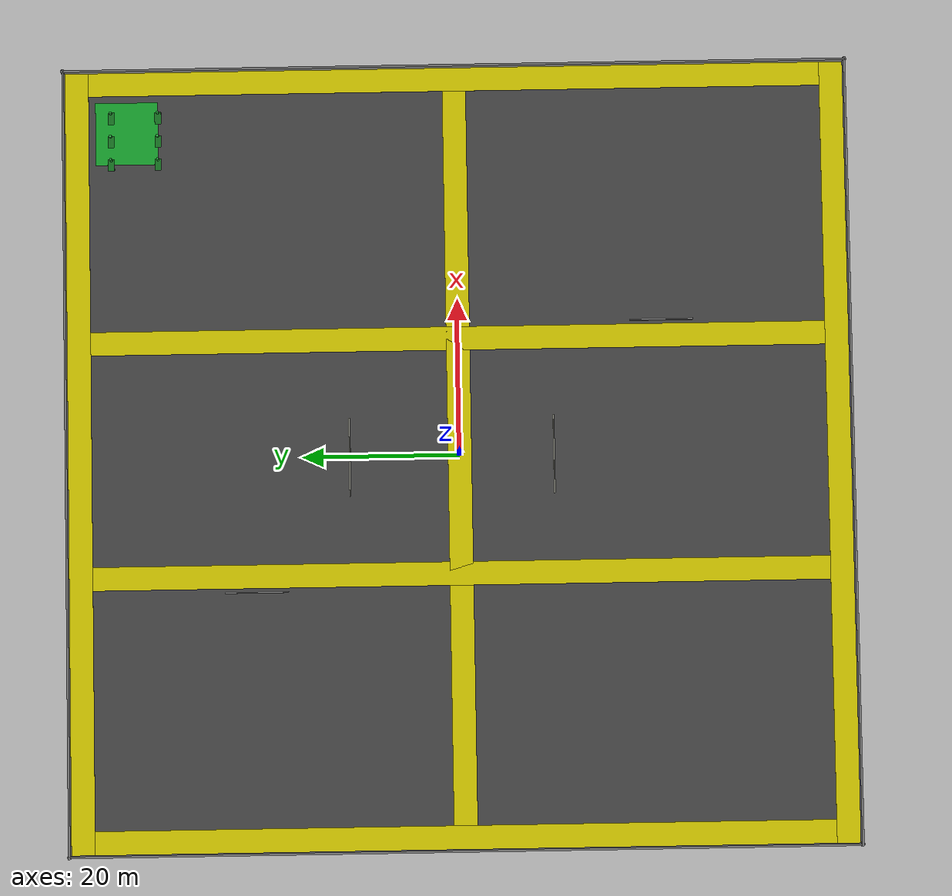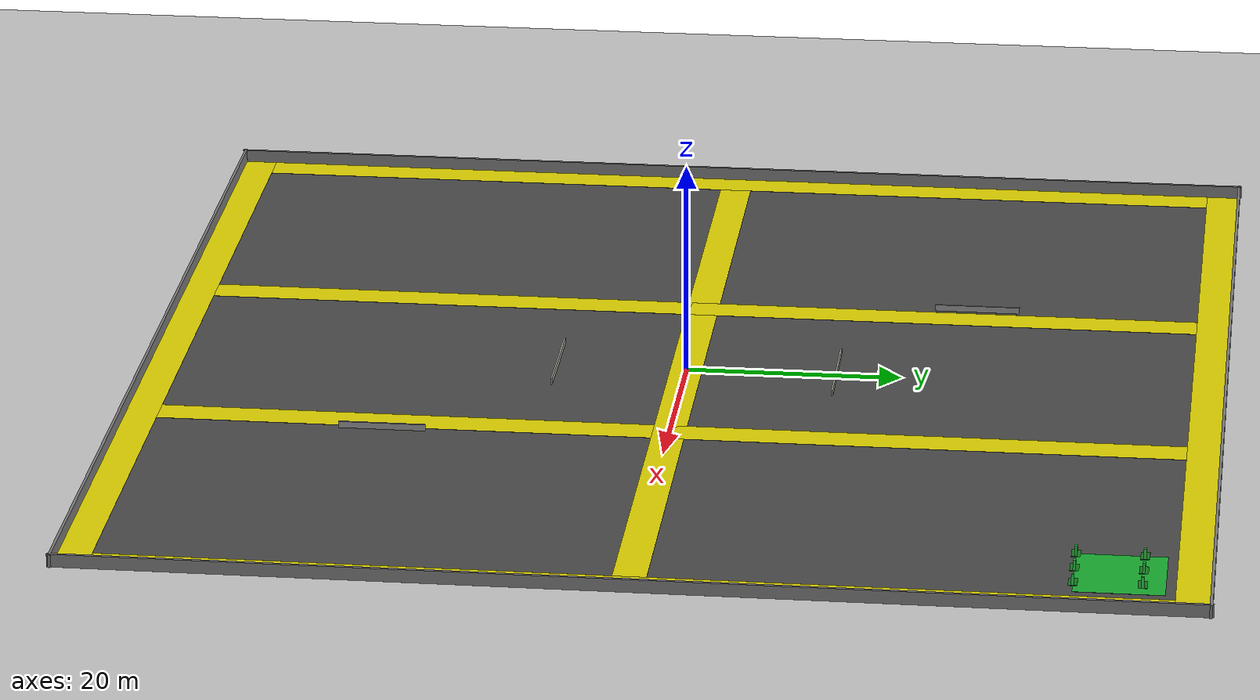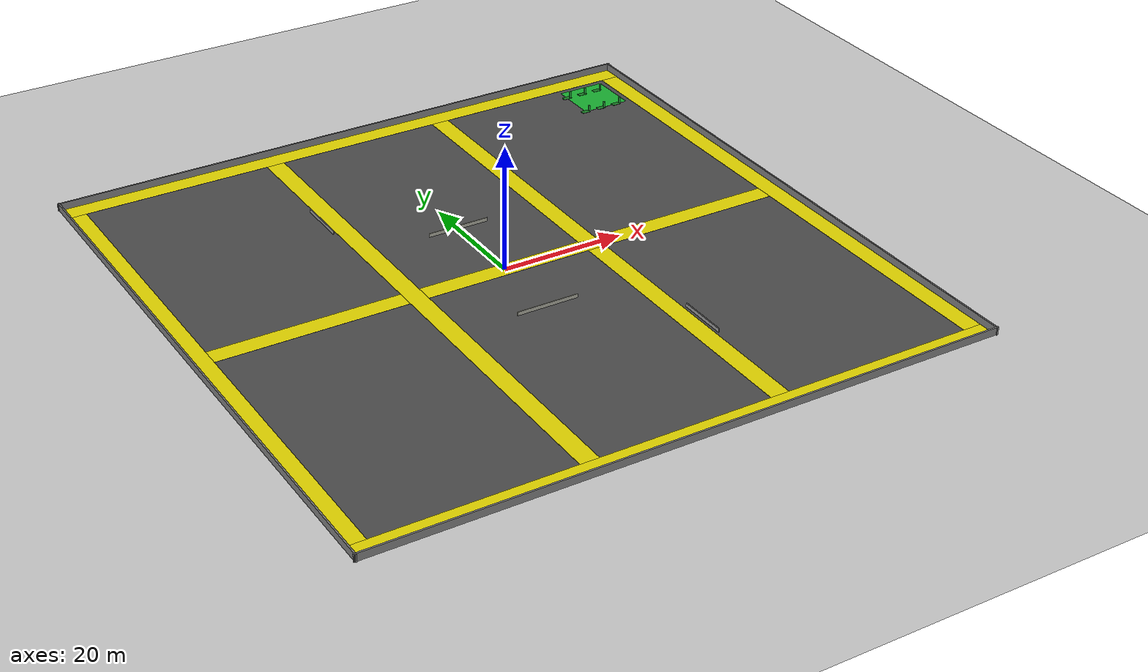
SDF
<sdf version="1.10">
 <world name="factory">
  <physics name="1ms" type="ignored">
   <max_step_size>0.001</max_step_size>
   <real_time_factor>1</real_time_factor>
   <real_time_update_rate>1000</real_time_update_rate>
  </physics>
  <plugin name="gz::sim::systems::Physics" filename="gz-sim-physics-system"/>
  <plugin name="gz::sim::systems::UserCommands" filename="gz-sim-user-commands-system"/>
  <plugin name="gz::sim::systems::SceneBroadcaster" filename="gz-sim-scene-broadcaster-system"/>
  <plugin name="gz::sim::systems::Sensors" filename="gz-sim-sensors-system">
   <render_engine>ogre2</render_engine>
  </plugin>
  <plugin name="gz::sim::systems::Contact" filename="gz-sim-contact-system"/>
  <gravity>0 0 -9.8000000000000007</gravity>
  <magnetic_field>5.5644999999999998e-06 2.2875799999999999e-05 -4.2388400000000002e-05</magnetic_field>
  <atmosphere type="adiabatic"/>
  <scene>
   <ambient>0.400000006 0.400000006 0.400000006 1</ambient>
   <background>0.699999988 0.699999988 0.699999988 1</background>
   <shadows>true</shadows>
  </scene>
  <model name="ground_plane">
   <static>true</static>
   <link name="link">
    <collision name="collision">
     <geometry><plane><normal>0 0 1</normal><size>200 200</size></plane></geometry>
    </collision>
    <visual name="visual">
     <geometry><plane><normal>0 0 1</normal><size>200 200</size></plane></geometry>
     <material>
      <ambient>0.800000012 0.800000012 0.800000012 1</ambient>
      <diffuse>0.800000012 0.800000012 0.800000012 1</diffuse>
     </material>
    </visual>
    <inertial>
     <mass>1</mass>
     <inertia><ixx>1</ixx><ixy>0</ixy><ixz>0</ixz><iyy>1</iyy><iyz>0</iyz><izz>1</izz></inertia>
    </inertial>
   </link>
  </model>
  <model name="factory_floor">
   <static>true</static>
   <pose>0 0 -0.0099999997764825821 0 0 0</pose>
   <link name="link">
    <collision name="collision"><geometry><box><size>100 100 0.02</size></box></geometry></collision>
    <visual name="visual">
     <geometry><box><size>100 100 0.02</size></box></geometry>
     <material>
      <ambient>0.300000012 0.300000012 0.300000012 1</ambient>
      <diffuse>0.300000012 0.300000012 0.300000012 1</diffuse>
     </material>
    </visual>
    <inertial>
     <mass>1</mass>
     <inertia><ixx>1</ixx><ixy>0</ixy><ixz>0</ixz><iyy>1</iyy><iyz>0</iyz><izz>1</izz></inertia>
    </inertial>
   </link>
  </model>
  <model name="wall_north">
   <static>true</static>
   <pose>0 50 0.59999999999999998 0 0 0</pose>
   <link name="link">
    <collision name="collision"><geometry><box><size>100.5 0.25 1.2</size></box></geometry></collision>
    <visual name="visual">
     <geometry><box><size>100.5 0.25 1.2</size></box></geometry>
     <material><ambient>0.5 0.5 0.5 1</ambient><diffuse>0.5 0.5 0.5 1</diffuse></material>
    </visual>
    <inertial>
     <mass>1</mass>
     <inertia><ixx>1</ixx><ixy>0</ixy><ixz>0</ixz><iyy>1</iyy><iyz>0</iyz><izz>1</izz></inertia>
    </inertial>
   </link>
  </model>
  <model name="wall_south">
   <static>true</static>
   <pose>0 -50 0.59999999999999998 0 0 0</pose>
   <link name="link">
    <collision name="collision"><geometry><box><size>100.5 0.25 1.2</size></box></geometry></collision>
    <visual name="visual">
     <geometry><box><size>100.5 0.25 1.2</size></box></geometry>
     <material><ambient>0.5 0.5 0.5 1</ambient><diffuse>0.5 0.5 0.5 1</diffuse></material>
    </visual>
    <inertial>
     <mass>1</mass>
     <inertia><ixx>1</ixx><ixy>0</ixy><ixz>0</ixz><iyy>1</iyy><iyz>0</iyz><izz>1</izz></inertia>
    </inertial>
   </link>
  </model>
  <model name="wall_east">
   <static>true</static>
   <pose>50 0 0.59999999999999998 0 0 0</pose>
   <link name="link">
    <collision name="collision"><geometry><box><size>0.25 100.5 1.2</size></box></geometry></collision>
    <visual name="visual">
     <geometry><box><size>0.25 100.5 1.2</size></box></geometry>
     <material><ambient>0.5 0.5 0.5 1</ambient><diffuse>0.5 0.5 0.5 1</diffuse></material>
    </visual>
    <inertial>
     <mass>1</mass>
     <inertia><ixx>1</ixx><ixy>0</ixy><ixz>0</ixz><iyy>1</iyy><iyz>0</iyz><izz>1</izz></inertia>
    </inertial>
   </link>
  </model>
  <model name="wall_west">
   <static>true</static>
   <pose>-50 0 0.59999999999999998 0 0 0</pose>
   <link name="link">
    <collision name="collision"><geometry><box><size>0.25 100.5 1.2</size></box></geometry></collision>
    <visual name="visual">
     <geometry><box><size>0.25 100.5 1.2</size></box></geometry>
     <material><ambient>0.5 0.5 0.5 1</ambient><diffuse>0.5 0.5 0.5 1</diffuse></material>
    </visual>
    <inertial>
     <mass>1</mass>
     <inertia><ixx>1</ixx><ixy>0</ixy><ixz>0</ixz><iyy>1</iyy><iyz>0</iyz><izz>1</izz></inertia>
    </inertial>
   </link>
  </model>
  <model name="road_perimeter_north">
   <static>true</static>
   <pose>0 48.375 0.0050000000000000001 0 0 0</pose>
   <link name="link">
    <collision name="collision"><geometry><box><size>99.75 3 0.01</size></box></geometry></collision>
    <visual name="visual">
     <geometry><box><size>99.75 3 0.01</size></box></geometry>
     <material>
      <ambient>0.899999976 0.850000024 0 1</ambient>
      <diffuse>0.899999976 0.850000024 0 1</diffuse>
     </material>
    </visual>
    <inertial>
     <mass>1</mass>
     <inertia><ixx>1</ixx><ixy>0</ixy><ixz>0</ixz><iyy>1</iyy><iyz>0</iyz><izz>1</izz></inertia>
    </inertial>
   </link>
  </model>
  <model name="road_perimeter_south">
   <static>true</static>
   <pose>0 -48.375 0.0050000000000000001 0 0 0</pose>
   <link name="link">
    <collision name="collision"><geometry><box><size>99.75 3 0.01</size></box></geometry></collision>
    <visual name="visual">
     <geometry><box><size>99.75 3 0.01</size></box></geometry>
     <material>
      <ambient>0.899999976 0.850000024 0 1</ambient>
      <diffuse>0.899999976 0.850000024 0 1</diffuse>
     </material>
    </visual>
    <inertial>
     <mass>1</mass>
     <inertia><ixx>1</ixx><ixy>0</ixy><ixz>0</ixz><iyy>1</iyy><iyz>0</iyz><izz>1</izz></inertia>
    </inertial>
   </link>
  </model>
  <model name="road_perimeter_east">
   <static>true</static>
   <pose>48.375 0 0.0050000000000000001 0 0 0</pose>
   <link name="link">
    <collision name="collision"><geometry><box><size>3 93.75 0.01</size></box></geometry></collision>
    <visual name="visual">
     <geometry><box><size>3 93.75 0.01</size></box></geometry>
     <material>
      <ambient>0.899999976 0.850000024 0 1</ambient>
      <diffuse>0.899999976 0.850000024 0 1</diffuse>
     </material>
    </visual>
    <inertial>
     <mass>1</mass>
     <inertia><ixx>1</ixx><ixy>0</ixy><ixz>0</ixz><iyy>1</iyy><iyz>0</iyz><izz>1</izz></inertia>
    </inertial>
   </link>
  </model>
  <model name="road_perimeter_west">
   <static>true</static>
   <pose>-48.375 0 0.0050000000000000001 0 0 0</pose>
   <link name="link">
    <collision name="collision"><geometry><box><size>3 93.75 0.01</size></box></geometry></collision>
    <visual name="visual">
     <geometry><box><size>3 93.75 0.01</size></box></geometry>
     <material>
      <ambient>0.899999976 0.850000024 0 1</ambient>
      <diffuse>0.899999976 0.850000024 0 1</diffuse>
     </material>
    </visual>
    <inertial>
     <mass>1</mass>
     <inertia><ixx>1</ixx><ixy>0</ixy><ixz>0</ixz><iyy>1</iyy><iyz>0</iyz><izz>1</izz></inertia>
    </inertial>
   </link>
  </model>
  <model name="road_vertical_1">
   <static>true</static>
   <pose>-15 0 0.0050000000000000001 0 0 0</pose>
   <link name="link">
    <collision name="collision"><geometry><box><size>3 93.75 0.01</size></box></geometry></collision>
    <visual name="visual">
     <geometry><box><size>3 93.75 0.01</size></box></geometry>
     <material>
      <ambient>0.899999976 0.850000024 0 1</ambient>
      <diffuse>0.899999976 0.850000024 0 1</diffuse>
     </material>
    </visual>
    <inertial>
     <mass>1</mass>
     <inertia><ixx>1</ixx><ixy>0</ixy><ixz>0</ixz><iyy>1</iyy><iyz>0</iyz><izz>1</izz></inertia>
    </inertial>
   </link>
  </model>
  <model name="road_vertical_2">
   <static>true</static>
   <pose>15 0 0.0050000000000000001 0 0 0</pose>
   <link name="link">
    <collision name="collision"><geometry><box><size>3 93.75 0.01</size></box></geometry></collision>
    <visual name="visual">
     <geometry><box><size>3 93.75 0.01</size></box></geometry>
     <material>
      <ambient>0.899999976 0.850000024 0 1</ambient>
      <diffuse>0.899999976 0.850000024 0 1</diffuse>
     </material>
    </visual>
    <inertial>
     <mass>1</mass>
     <inertia><ixx>1</ixx><ixy>0</ixy><ixz>0</ixz><iyy>1</iyy><iyz>0</iyz><izz>1</izz></inertia>
    </inertial>
   </link>
  </model>
  <model name="road_horizontal">
   <static>true</static>
   <pose>0 0 0.0050000000000000001 0 0 0</pose>
   <link name="link">
    <collision name="collision"><geometry><box><size>93.75 3 0.01</size></box></geometry></collision>
    <visual name="visual">
     <geometry><box><size>93.75 3 0.01</size></box></geometry>
     <material>
      <ambient>0.899999976 0.850000024 0 1</ambient>
      <diffuse>0.899999976 0.850000024 0 1</diffuse>
     </material>
    </visual>
    <inertial>
     <mass>1</mass>
     <inertia><ixx>1</ixx><ixy>0</ixy><ixz>0</ixz><iyy>1</iyy><iyz>0</iyz><izz>1</izz></inertia>
    </inertial>
   </link>
  </model>
  <model name="charging_floor">
   <static>true</static>
   <pose>42 42 0.0060000000000000001 0 0 0</pose>
   <link name="link">
    <collision name="collision"><geometry><box><size>8 8 0.01</size></box></geometry></collision>
    <visual name="visual">
     <geometry><box><size>8 8 0.01</size></box></geometry>
     <material>
      <ambient>0.100000001 0.699999988 0.200000003 1</ambient>
      <diffuse>0.100000001 0.699999988 0.200000003 1</diffuse>
     </material>
    </visual>
    <inertial>
     <mass>1</mass>
     <inertia><ixx>1</ixx><ixy>0</ixy><ixz>0</ixz><iyy>1</iyy><iyz>0</iyz><izz>1</izz></inertia>
    </inertial>
   </link>
  </model>
  <model name="charger_1">
   <static>true</static>
   <pose>38 38 0 0 0 0</pose>
   <link name="link">
    <collision name="collision_base">
     <pose>0 0 0.025000000000000001 0 0 0</pose>
     <geometry><box><size>1.5 0.80000000000000004 0.050000000000000003</size></box></geometry>
    </collision>
    <visual name="visual_base">
     <pose>0 0 0.025000000000000001 0 0 0</pose>
     <geometry><box><size>1.5 0.80000000000000004 0.050000000000000003</size></box></geometry>
     <material>
      <ambient>0.100000001 0.5 0.150000006 1</ambient>
      <diffuse>0.100000001 0.5 0.150000006 1</diffuse>
     </material>
    </visual>
    <collision name="collision_post">
     <pose>0.59999999999999998 0 0.55000000000000004 0 0 0</pose>
     <geometry><box><size>0.25 0.25 1</size></box></geometry>
    </collision>
    <visual name="visual_post">
     <pose>0.59999999999999998 0 0.55000000000000004 0 0 0</pose>
     <geometry><box><size>0.25 0.25 1</size></box></geometry>
     <material>
      <ambient>0.200000003 0.800000012 0.300000012 1</ambient>
      <diffuse>0.200000003 0.800000012 0.300000012 1</diffuse>
     </material>
    </visual>
    <inertial>
     <mass>1</mass>
     <inertia><ixx>1</ixx><ixy>0</ixy><ixz>0</ixz><iyy>1</iyy><iyz>0</iyz><izz>1</izz></inertia>
    </inertial>
   </link>
  </model>
  <model name="charger_2">
   <static>true</static>
   <pose>41 38 0 0 0 0</pose>
   <link name="link">
    <collision name="collision_base">
     <pose>0 0 0.025000000000000001 0 0 0</pose>
     <geometry><box><size>1.5 0.80000000000000004 0.050000000000000003</size></box></geometry>
    </collision>
    <visual name="visual_base">
     <pose>0 0 0.025000000000000001 0 0 0</pose>
     <geometry><box><size>1.5 0.80000000000000004 0.050000000000000003</size></box></geometry>
     <material>
      <ambient>0.100000001 0.5 0.150000006 1</ambient>
      <diffuse>0.100000001 0.5 0.150000006 1</diffuse>
     </material>
    </visual>
    <collision name="collision_post">
     <pose>0.59999999999999998 0 0.55000000000000004 0 0 0</pose>
     <geometry><box><size>0.25 0.25 1</size></box></geometry>
    </collision>
    <visual name="visual_post">
     <pose>0.59999999999999998 0 0.55000000000000004 0 0 0</pose>
     <geometry><box><size>0.25 0.25 1</size></box></geometry>
     <material>
      <ambient>0.200000003 0.800000012 0.300000012 1</ambient>
      <diffuse>0.200000003 0.800000012 0.300000012 1</diffuse>
     </material>
    </visual>
    <inertial>
     <mass>1</mass>
     <inertia><ixx>1</ixx><ixy>0</ixy><ixz>0</ixz><iyy>1</iyy><iyz>0</iyz><izz>1</izz></inertia>
    </inertial>
   </link>
  </model>
  <model name="charger_3">
   <static>true</static>
   <pose>44 38 0 0 0 0</pose>
   <link name="link">
    <collision name="collision_base">
     <pose>0 0 0.025000000000000001 0 0 0</pose>
     <geometry><box><size>1.5 0.80000000000000004 0.050000000000000003</size></box></geometry>
    </collision>
    <visual name="visual_base">
     <pose>0 0 0.025000000000000001 0 0 0</pose>
     <geometry><box><size>1.5 0.80000000000000004 0.050000000000000003</size></box></geometry>
     <material>
      <ambient>0.100000001 0.5 0.150000006 1</ambient>
      <diffuse>0.100000001 0.5 0.150000006 1</diffuse>
     </material>
    </visual>
    <collision name="collision_post">
     <pose>0.59999999999999998 0 0.55000000000000004 0 0 0</pose>
     <geometry><box><size>0.25 0.25 1</size></box></geometry>
    </collision>
    <visual name="visual_post">
     <pose>0.59999999999999998 0 0.55000000000000004 0 0 0</pose>
     <geometry><box><size>0.25 0.25 1</size></box></geometry>
     <material>
      <ambient>0.200000003 0.800000012 0.300000012 1</ambient>
      <diffuse>0.200000003 0.800000012 0.300000012 1</diffuse>
     </material>
    </visual>
    <inertial>
     <mass>1</mass>
     <inertia><ixx>1</ixx><ixy>0</ixy><ixz>0</ixz><iyy>1</iyy><iyz>0</iyz><izz>1</izz></inertia>
    </inertial>
   </link>
  </model>
  <model name="charger_4">
   <static>true</static>
   <pose>38 44 0 0 0 0</pose>
   <link name="link">
    <collision name="collision_base">
     <pose>0 0 0.025000000000000001 0 0 0</pose>
     <geometry><box><size>1.5 0.80000000000000004 0.050000000000000003</size></box></geometry>
    </collision>
    <visual name="visual_base">
     <pose>0 0 0.025000000000000001 0 0 0</pose>
     <geometry><box><size>1.5 0.80000000000000004 0.050000000000000003</size></box></geometry>
     <material>
      <ambient>0.100000001 0.5 0.150000006 1</ambient>
      <diffuse>0.100000001 0.5 0.150000006 1</diffuse>
     </material>
    </visual>
    <collision name="collision_post">
     <pose>0.59999999999999998 0 0.55000000000000004 0 0 0</pose>
     <geometry><box><size>0.25 0.25 1</size></box></geometry>
    </collision>
    <visual name="visual_post">
     <pose>0.59999999999999998 0 0.55000000000000004 0 0 0</pose>
     <geometry><box><size>0.25 0.25 1</size></box></geometry>
     <material>
      <ambient>0.200000003 0.800000012 0.300000012 1</ambient>
      <diffuse>0.200000003 0.800000012 0.300000012 1</diffuse>
     </material>
    </visual>
    <inertial>
     <mass>1</mass>
     <inertia><ixx>1</ixx><ixy>0</ixy><ixz>0</ixz><iyy>1</iyy><iyz>0</iyz><izz>1</izz></inertia>
    </inertial>
   </link>
  </model>
  <model name="charger_5">
   <static>true</static>
   <pose>41 44 0 0 0 0</pose>
   <link name="link">
    <collision name="collision_base">
     <pose>0 0 0.025000000000000001 0 0 0</pose>
     <geometry><box><size>1.5 0.80000000000000004 0.050000000000000003</size></box></geometry>
    </collision>
    <visual name="visual_base">
     <pose>0 0 0.025000000000000001 0 0 0</pose>
     <geometry><box><size>1.5 0.80000000000000004 0.050000000000000003</size></box></geometry>
     <material>
      <ambient>0.100000001 0.5 0.150000006 1</ambient>
      <diffuse>0.100000001 0.5 0.150000006 1</diffuse>
     </material>
    </visual>
    <collision name="collision_post">
     <pose>0.59999999999999998 0 0.55000000000000004 0 0 0</pose>
     <geometry><box><size>0.25 0.25 1</size></box></geometry>
    </collision>
    <visual name="visual_post">
     <pose>0.59999999999999998 0 0.55000000000000004 0 0 0</pose>
     <geometry><box><size>0.25 0.25 1</size></box></geometry>
     <material>
      <ambient>0.200000003 0.800000012 0.300000012 1</ambient>
      <diffuse>0.200000003 0.800000012 0.300000012 1</diffuse>
     </material>
    </visual>
    <inertial>
     <mass>1</mass>
     <inertia><ixx>1</ixx><ixy>0</ixy><ixz>0</ixz><iyy>1</iyy><iyz>0</iyz><izz>1</izz></inertia>
    </inertial>
   </link>
  </model>
  <model name="charger_6">
   <static>true</static>
   <pose>44 44 0 0 0 0</pose>
   <link name="link">
    <collision name="collision_base">
     <pose>0 0 0.025000000000000001 0 0 0</pose>
     <geometry><box><size>1.5 0.80000000000000004 0.050000000000000003</size></box></geometry>
    </collision>
    <visual name="visual_base">
     <pose>0 0 0.025000000000000001 0 0 0</pose>
     <geometry><box><size>1.5 0.80000000000000004 0.050000000000000003</size></box></geometry>
     <material>
      <ambient>0.100000001 0.5 0.150000006 1</ambient>
      <diffuse>0.100000001 0.5 0.150000006 1</diffuse>
     </material>
    </visual>
    <collision name="collision_post">
     <pose>0.59999999999999998 0 0.55000000000000004 0 0 0</pose>
     <geometry><box><size>0.25 0.25 1</size></box></geometry>
    </collision>
    <visual name="visual_post">
     <pose>0.59999999999999998 0 0.55000000000000004 0 0 0</pose>
     <geometry><box><size>0.25 0.25 1</size></box></geometry>
     <material>
      <ambient>0.200000003 0.800000012 0.300000012 1</ambient>
      <diffuse>0.200000003 0.800000012 0.300000012 1</diffuse>
     </material>
    </visual>
    <inertial>
     <mass>1</mass>
     <inertia><ixx>1</ixx><ixy>0</ixy><ixz>0</ixz><iyy>1</iyy><iyz>0</iyz><izz>1</izz></inertia>
    </inertial>
   </link>
  </model>
  <model name="partition_nw_1">
   <static>true</static>
   <pose>-17 26 0.29999999999999999 0 0 0</pose>
   <link name="link">
    <collision name="collision">
     <geometry><box><size>0.14999999999999999 8 0.59999999999999998</size></box></geometry>
    </collision>
    <visual name="visual">
     <geometry><box><size>0.14999999999999999 8 0.59999999999999998</size></box></geometry>
     <material>
      <ambient>0.600000024 0.600000024 0.600000024 1</ambient>
      <diffuse>0.600000024 0.600000024 0.600000024 1</diffuse>
     </material>
    </visual>
    <inertial>
     <mass>1</mass>
     <inertia><ixx>1</ixx><ixy>0</ixy><ixz>0</ixz><iyy>1</iyy><iyz>0</iyz><izz>1</izz></inertia>
    </inertial>
   </link>
  </model>
  <model name="partition_cw_1">
   <static>true</static>
   <pose>0 14 0.29999999999999999 0 0 0</pose>
   <link name="link">
    <collision name="collision">
     <geometry><box><size>10 0.14999999999999999 0.59999999999999998</size></box></geometry>
    </collision>
    <visual name="visual">
     <geometry><box><size>10 0.14999999999999999 0.59999999999999998</size></box></geometry>
     <material>
      <ambient>0.649999976 0.649999976 0.600000024 1</ambient>
      <diffuse>0.649999976 0.649999976 0.600000024 1</diffuse>
     </material>
    </visual>
    <inertial>
     <mass>1</mass>
     <inertia><ixx>1</ixx><ixy>0</ixy><ixz>0</ixz><iyy>1</iyy><iyz>0</iyz><izz>1</izz></inertia>
    </inertial>
   </link>
  </model>
  <model name="partition_cc_1">
   <static>true</static>
   <pose>0 -12 0.29999999999999999 0 0 0</pose>
   <link name="link">
    <collision name="collision">
     <geometry><box><size>10 0.14999999999999999 0.59999999999999998</size></box></geometry>
    </collision>
    <visual name="visual">
     <geometry><box><size>10 0.14999999999999999 0.59999999999999998</size></box></geometry>
     <material>
      <ambient>0.649999976 0.649999976 0.600000024 1</ambient>
      <diffuse>0.649999976 0.649999976 0.600000024 1</diffuse>
     </material>
    </visual>
    <inertial>
     <mass>1</mass>
     <inertia><ixx>1</ixx><ixy>0</ixy><ixz>0</ixz><iyy>1</iyy><iyz>0</iyz><izz>1</izz></inertia>
    </inertial>
   </link>
  </model>
  <model name="partition_se_1">
   <static>true</static>
   <pose>17 -26 0.29999999999999999 0 0 0</pose>
   <link name="link">
    <collision name="collision">
     <geometry><box><size>0.14999999999999999 8 0.59999999999999998</size></box></geometry>
    </collision>
    <visual name="visual">
     <geometry><box><size>0.14999999999999999 8 0.59999999999999998</size></box></geometry>
     <material>
      <ambient>0.600000024 0.600000024 0.600000024 1</ambient>
      <diffuse>0.600000024 0.600000024 0.600000024 1</diffuse>
     </material>
    </visual>
    <inertial>
     <mass>1</mass>
     <inertia><ixx>1</ixx><ixy>0</ixy><ixz>0</ixz><iyy>1</iyy><iyz>0</iyz><izz>1</izz></inertia>
    </inertial>
   </link>
  </model>
  <light name="sun" type="directional">
   <pose>0 0 10 0 0 0</pose>
   <intensity>1</intensity>
   <direction>-0.5 0.10000000000000001 -0.90000000000000002</direction>
   <diffuse>0.800000012 0.800000012 0.800000012 1</diffuse>
   <specular>0.200000003 0.200000003 0.200000003 1</specular>
   <attenuation>
    <range>1000</range>
    <linear>0.01</linear>
    <constant>0.90000000000000002</constant>
    <quadratic>0.001</quadratic>
   </attenuation>
   <spot><inner_angle>0</inner_angle><outer_angle>0</outer_angle><falloff>0</falloff></spot>
  </light>
  <light name="light_nw" type="point">
   <pose>-25 25 8 0 0 0</pose>
   <intensity>1</intensity>
   <direction>0 0 -1</direction>
   <diffuse>0.5 0.5 0.5 1</diffuse>
   <specular>0.200000003 0.200000003 0.200000003 1</specular>
   <attenuation>
    <range>80</range>
    <linear>0.01</linear>
    <constant>0.29999999999999999</constant>
    <quadratic>0.001</quadratic>
   </attenuation>
   <spot><inner_angle>0</inner_angle><outer_angle>0</outer_angle><falloff>0</falloff></spot>
  </light>
  <light name="light_ne" type="point">
   <pose>25 25 8 0 0 0</pose>
   <intensity>1</intensity>
   <direction>0 0 -1</direction>
   <diffuse>0.5 0.5 0.5 1</diffuse>
   <specular>0.200000003 0.200000003 0.200000003 1</specular>
   <attenuation>
    <range>80</range>
    <linear>0.01</linear>
    <constant>0.29999999999999999</constant>
    <quadratic>0.001</quadratic>
   </attenuation>
   <spot><inner_angle>0</inner_angle><outer_angle>0</outer_angle><falloff>0</falloff></spot>
  </light>
  <light name="light_sw" type="point">
   <pose>-25 -25 8 0 0 0</pose>
   <intensity>1</intensity>
   <direction>0 0 -1</direction>
   <diffuse>0.5 0.5 0.5 1</diffuse>
   <specular>0.200000003 0.200000003 0.200000003 1</specular>
   <attenuation>
    <range>80</range>
    <linear>0.01</linear>
    <constant>0.29999999999999999</constant>
    <quadratic>0.001</quadratic>
   </attenuation>
   <spot><inner_angle>0</inner_angle><outer_angle>0</outer_angle><falloff>0</falloff></spot>
  </light>
  <light name="light_se" type="point">
   <pose>25 -25 8 0 0 0</pose>
   <intensity>1</intensity>
   <direction>0 0 -1</direction>
   <diffuse>0.5 0.5 0.5 1</diffuse>
   <specular>0.200000003 0.200000003 0.200000003 1</specular>
   <attenuation>
    <range>80</range>
    <linear>0.01</linear>
    <constant>0.29999999999999999</constant>
    <quadratic>0.001</quadratic>
   </attenuation>
   <spot><inner_angle>0</inner_angle><outer_angle>0</outer_angle><falloff>0</falloff></spot>
  </light>
 </world>
</sdf>
